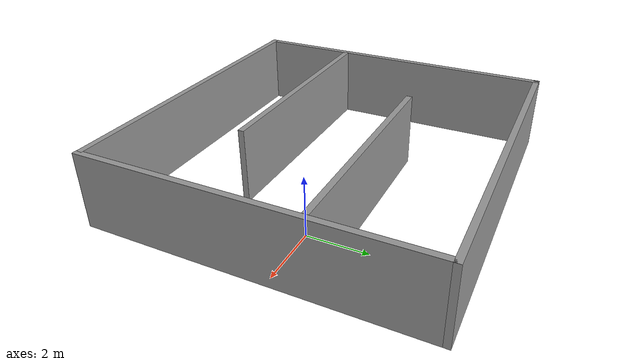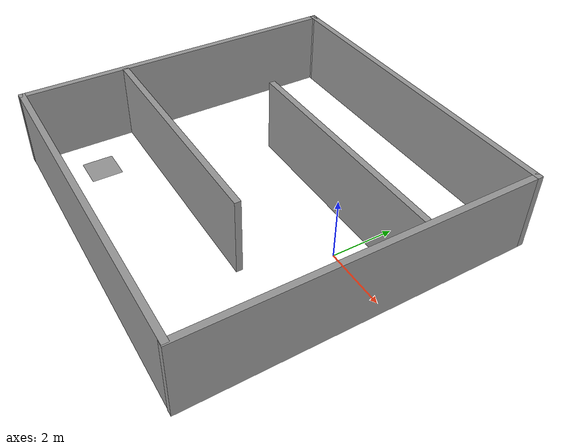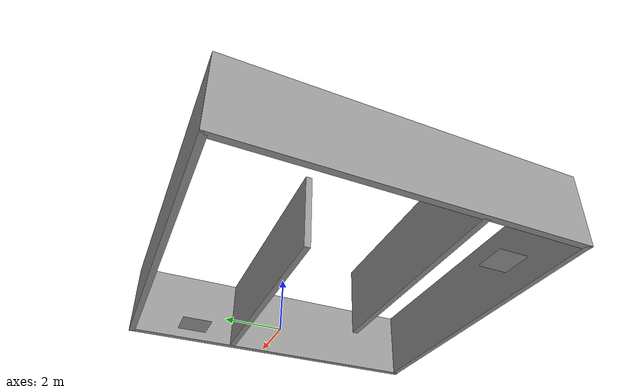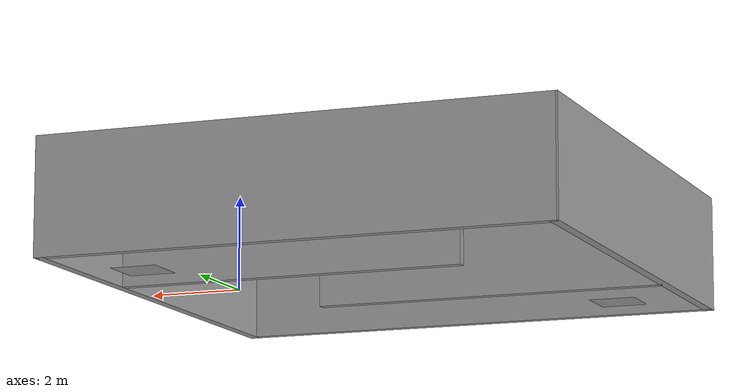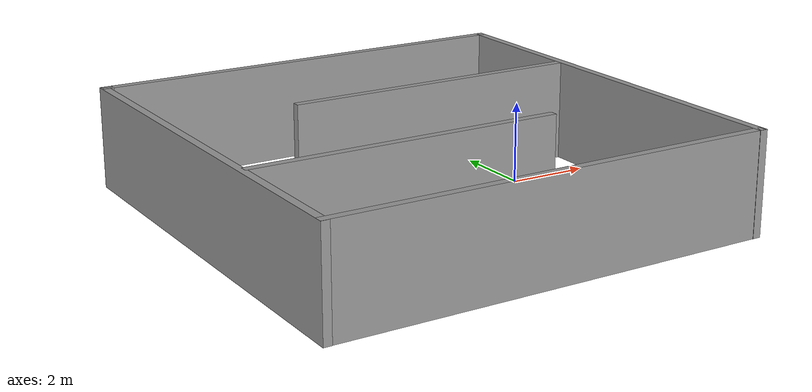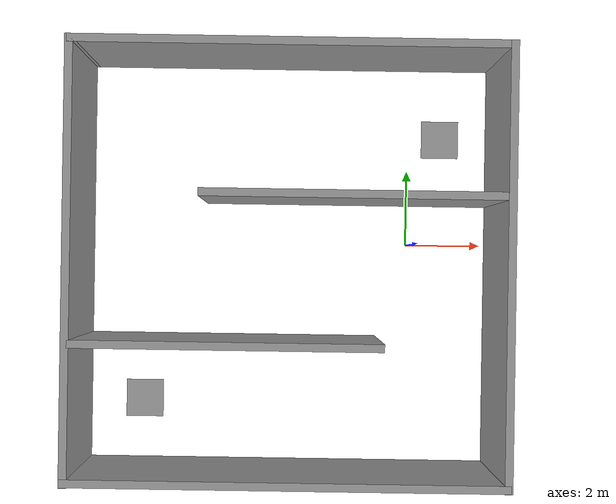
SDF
<?xml version='1.0'?>
<sdf version='1.4'>
  <model name='NewCorridor'>
    <link name='Stairs_1'>
      <visual name='Stairs_1_Visual_0'>
        <pose>0.884229 2.88593 0 0 -0 0</pose>
        <geometry>
          <box>
            <size>1 1 0</size>
          </box>
        </geometry>
        <material>
          <script>
            <uri>file://media/materials/scripts/gazebo.material</uri>
            <name>Gazebo/Grey</name>
          </script>
        </material>
      </visual>
      <collision name='Stairs_1_Collision_0'>
        <geometry>
          <box>
            <size>1 1 0</size>
          </box>
        </geometry>
        <pose>0.884229 2.88593 0 0 -0 0</pose>
      </collision>
    </link>
    <link name='Stairs_3'>
      <visual name='Stairs_3_Visual_0'>
        <pose>-7.04016 -4.25572 0 0 -0 0</pose>
        <geometry>
          <box>
            <size>1 1 0</size>
          </box>
        </geometry>
        <material>
          <script>
            <uri>file://media/materials/scripts/gazebo.material</uri>
            <name>Gazebo/Grey</name>
          </script>
        </material>
      </visual>
      <collision name='Stairs_3_Collision_0'>
        <geometry>
          <box>
            <size>1 1 0</size>
          </box>
        </geometry>
        <pose>-7.04016 -4.25572 0 0 -0 0</pose>
      </collision>
    </link>
    <link name='Wall_32'>
      <collision name='Wall_32_Collision'>
        <geometry>
          <box>
            <size>10.9613 0.2 2.5</size>
          </box>
        </geometry>
        <pose>0 0 1.25 0 -0 0</pose>
      </collision>
      <visual name='Wall_32_Visual'>
        <pose>0 0 1.25 0 -0 0</pose>
        <geometry>
          <box>
            <size>10.9613 0.2 2.5</size>
          </box>
        </geometry>
        <material>
          <script>
            <uri>file://media/materials/scripts/gazebo.material</uri>
            <name>Gazebo/Grey</name>
          </script>
        </material>
      </visual>
      <velocity_decay>
        <linear>0</linear>
        <angular>0</angular>
      </velocity_decay>
      <pose>-3.19682 -5.94563 0 0 -0 0</pose>
    </link>
    <link name='Wall_44'>
      <collision name='Wall_44_Collision'>
        <geometry>
          <box>
            <size>7.70236 0.2 2.5</size>
          </box>
        </geometry>
        <pose>0 0 1.25 0 -0 0</pose>
      </collision>
      <visual name='Wall_44_Visual'>
        <pose>0 0 1.25 0 -0 0</pose>
        <geometry>
          <box>
            <size>7.70236 0.2 2.5</size>
          </box>
        </geometry>
        <material>
          <script>
            <uri>file://media/materials/scripts/gazebo.material</uri>
            <name>Gazebo/Grey</name>
          </script>
        </material>
      </visual>
      <velocity_decay>
        <linear>0</linear>
        <angular>0</angular>
      </velocity_decay>
      <pose>-4.67656 -2.56666 0 0 -0 0</pose>
    </link>
    <link name='Wall_52'>
      <collision name='Wall_52_Collision'>
        <geometry>
          <box>
            <size>11.0016 0.2 2.5</size>
          </box>
        </geometry>
        <pose>0 0 1.25 0 -0 0</pose>
      </collision>
      <visual name='Wall_52_Visual'>
        <pose>0 0 1.25 0 -0 0</pose>
        <geometry>
          <box>
            <size>11.0016 0.2 2.5</size>
          </box>
        </geometry>
        <material>
          <script>
            <uri>file://media/materials/scripts/gazebo.material</uri>
            <name>Gazebo/Grey</name>
          </script>
        </material>
      </visual>
      <velocity_decay>
        <linear>0</linear>
        <angular>0</angular>
      </velocity_decay>
      <pose>2.22417 -0.554039 0 0 -0 1.5708</pose>
    </link>
    <link name='Wall_54'>
      <collision name='Wall_54_Collision'>
        <geometry>
          <box>
            <size>10.9612 0.2 2.5</size>
          </box>
        </geometry>
        <pose>0 0 1.25 0 -0 0</pose>
      </collision>
      <visual name='Wall_54_Visual'>
        <pose>0 0 1.25 0 -0 0</pose>
        <geometry>
          <box>
            <size>10.9612 0.2 2.5</size>
          </box>
        </geometry>
        <material>
          <script>
            <uri>file://media/materials/scripts/gazebo.material</uri>
            <name>Gazebo/Grey</name>
          </script>
        </material>
      </visual>
      <velocity_decay>
        <linear>0</linear>
        <angular>0</angular>
      </velocity_decay>
      <pose>-3.15642 4.84678 0 0 -0 3.14159</pose>
    </link>
    <link name='Wall_55'>
      <collision name='Wall_55_Collision'>
        <geometry>
          <box>
            <size>0.250456 0.2 2.5</size>
          </box>
        </geometry>
        <pose>0 0 1.25 0 -0 0</pose>
      </collision>
      <visual name='Wall_55_Visual'>
        <pose>0 0 1.25 0 -0 0</pose>
        <geometry>
          <box>
            <size>0.250456 0.2 2.5</size>
          </box>
        </geometry>
        <material>
          <script>
            <uri>file://media/materials/scripts/gazebo.material</uri>
            <name>Gazebo/Grey</name>
          </script>
        </material>
      </visual>
      <velocity_decay>
        <linear>0</linear>
        <angular>0</angular>
      </velocity_decay>
      <pose>-8.51179 4.84678 0 0 -0 0</pose>
    </link>
    <link name='Wall_57'>
      <collision name='Wall_57_Collision'>
        <geometry>
          <box>
            <size>11.0016 0.2 2.5</size>
          </box>
        </geometry>
        <pose>0 0 1.25 0 -0 0</pose>
      </collision>
      <visual name='Wall_57_Visual'>
        <pose>0 0 1.25 0 -0 0</pose>
        <geometry>
          <box>
            <size>11.0016 0.2 2.5</size>
          </box>
        </geometry>
        <material>
          <script>
            <uri>file://media/materials/scripts/gazebo.material</uri>
            <name>Gazebo/Grey</name>
          </script>
        </material>
      </visual>
      <velocity_decay>
        <linear>0</linear>
        <angular>0</angular>
      </velocity_decay>
      <pose>-8.57747 -0.554039 0 0 0 -1.5708</pose>
    </link>
    <link name='Wall_59'>
      <collision name='Wall_59_Collision'>
        <geometry>
          <box>
            <size>7.52246 0.2 2.5</size>
          </box>
        </geometry>
        <pose>0 0 1.25 0 -0 0</pose>
      </collision>
      <visual name='Wall_59_Visual'>
        <pose>0 0 1.25 0 -0 0</pose>
        <geometry>
          <box>
            <size>7.52246 0.2 2.5</size>
          </box>
        </geometry>
        <material>
          <script>
            <uri>file://media/materials/scripts/gazebo.material</uri>
            <name>Gazebo/Grey</name>
          </script>
        </material>
      </visual>
      <velocity_decay>
        <linear>0</linear>
        <angular>0</angular>
      </velocity_decay>
      <pose>-1.63934 1.16532 0 0 -0 3.14159</pose>
    </link>
    <static>1</static>
  </model>
</sdf>
